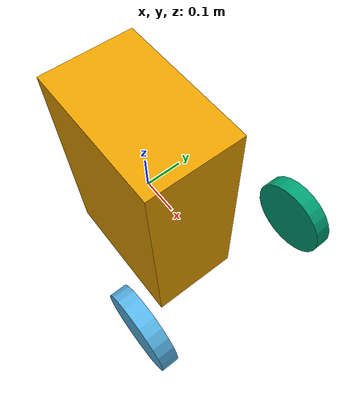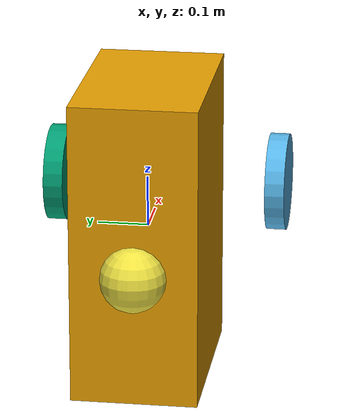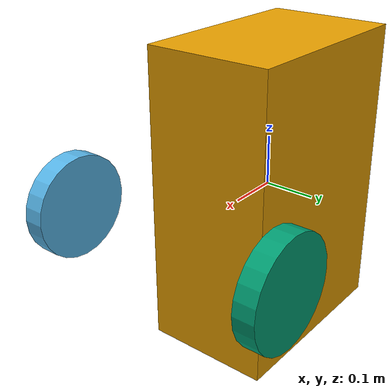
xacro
<?xml version="1.0"?>
<robot xmlns:xacro="http://www.ros.org/wiki/xacro" name="cartbot">

    <xacro:property name="body_mass" value="15"/>
    <xacro:property name="body_width" value="0.4"/>
    <xacro:property name="body_height" value="0.25"/>
    <xacro:property name="body_length" value="0.6"/>
    <xacro:property name="wheel_gap" value="0.46"/>
    <xacro:property name="wheel_mass" value="1"/>
    <xacro:property name="wheel_radius" value="0.1"/>
    <xacro:property name="wheel_width" value="0.04"/>
    <xacro:property name="ground_clearnace" value="0.15"/>

    <xacro:macro name="box_inertia" params="m w h d">
        <inertial>
            <mass value="${m}"/>
            <inertia ixx="${m / 12.0 * (d*d + h*h)}" ixy="0.0" ixz="0.0" iyy="${m / 12.0 * (w*w + h*h)}" iyz="0.0" izz="${m / 12.0 * (w*w + d*d)}"/>
        </inertial>
    </xacro:macro>

    <xacro:macro name="cylinder_inertia" params="m r h">
        <inertial>
            <mass value="${m}"/>
            <inertia ixx="${m*(3*r*r+h*h)/12}" ixy = "0" ixz = "0" iyy="${m*(3*r*r+h*h)/12}" iyz = "0" izz="${m*r*r/2}"/>
        </inertial>
    </xacro:macro>

    <link name="body_link">
        <xacro:box_inertia m="${body_mass}" w="${body_width}" h="${body_height}" d="${body_length}"/>
        <visual>
            <origin xyz="0.0 0.0 0.0" rpy="0.0 0.0 0.0"/>
            <geometry>
                <box size="${body_width} ${body_height} ${body_length}"/>
            </geometry>
        </visual>
        <collision>
            <geometry>
                <box size="${body_width} ${body_height} ${body_length}"/>
            </geometry>
        </collision>
    </link>

    <link name="wheel_left_link">
        <xacro:cylinder_inertia m="${wheel_mass}" r="${wheel_radius}" h="${wheel_width}"/>
        <visual>
            <origin xyz="0.0 0.0 0.0" rpy="0.0 0.0 0.0"/>
            <geometry>
                <cylinder length="${wheel_width}" radius="${wheel_radius}"/>
            </geometry>
        </visual>
        <collision>
            <geometry>
                <cylinder length="${wheel_width}" radius="${wheel_radius}"/>
            </geometry>
        </collision>
    </link>

    <joint name="wheel_left_joint" type="continuous">
        <parent link="body_link"/>
        <child link="wheel_left_link"/>
        <origin xyz="${body_length/2} ${wheel_gap/2 *-1} 0.0" rpy="0.0 ${pi/2} ${pi/2}"/>
    </joint>

    <link name="wheel_right_link">
        <xacro:cylinder_inertia m="${wheel_mass}" r="${wheel_radius}" h="${wheel_width}"/>
        <visual>
            <origin xyz="0.0 0.0 0.0" rpy="0.0 0.0 0.0"/>
            <geometry>
                <cylinder length="${wheel_width}" radius="${wheel_radius}"/>
            </geometry>
        </visual>
        <collision>
            <geometry>
                <cylinder length="${wheel_width}" radius="${wheel_radius}"/>
            </geometry>
        </collision>
    </link>

    <joint name="wheel_right_joint" type="continuous">
        <parent link="body_link"/>
        <child link="wheel_right_link"/>
        <origin xyz="${body_length/2} ${wheel_gap/2} 0.0" rpy="0.0 ${pi/2} ${pi/2}"/>
    </joint>

    <joint name="caster_joint" type="continuous">
        <parent link="body_link"/>
        <child link="caster_wheel_link"/>
        <origin xyz="-0.2 0.0 -0.04" rpy="0.0 0.0 0.0" />
    </joint>

    <link name="caster_wheel_link">
        <visual>
            <origin xyz="0.0 0.0 0.0" rpy="0.0 0.0 0.0"/>
            <geometry>
                <sphere radius="0.065" />
            </geometry>
        </visual>
    </link>
</robot>
